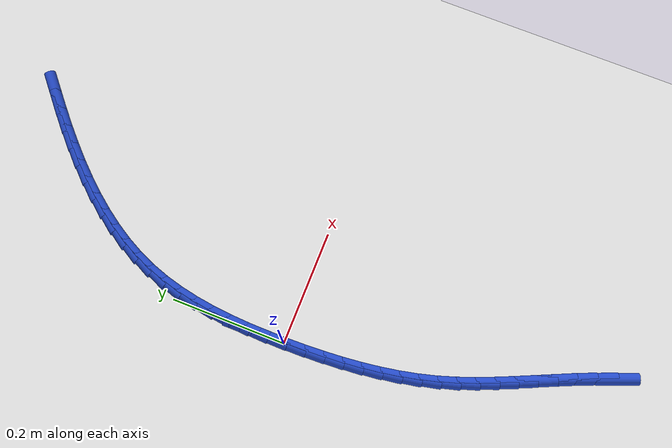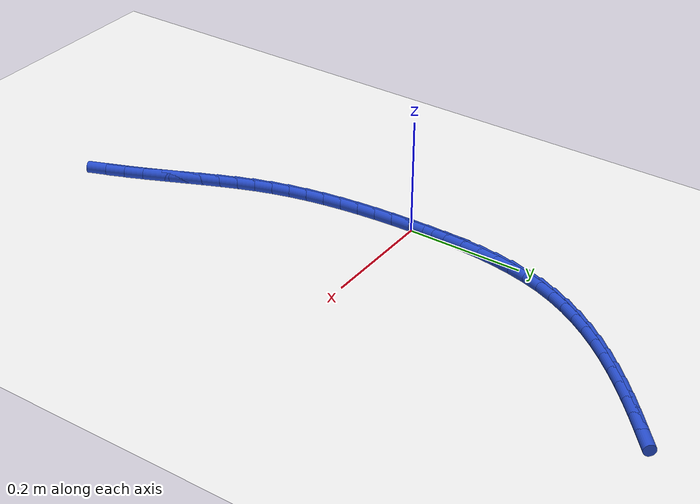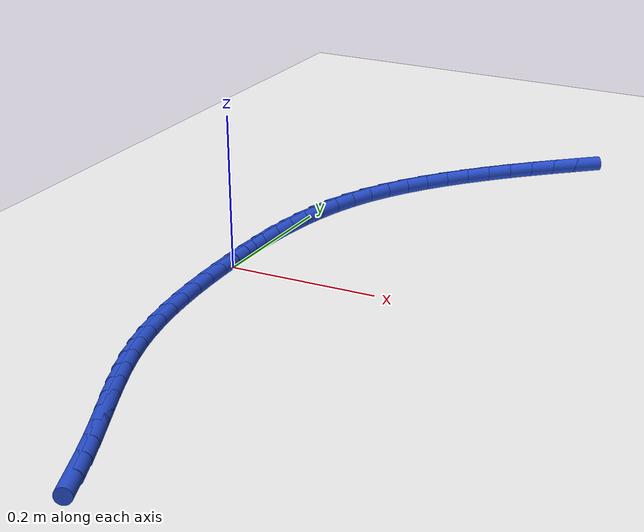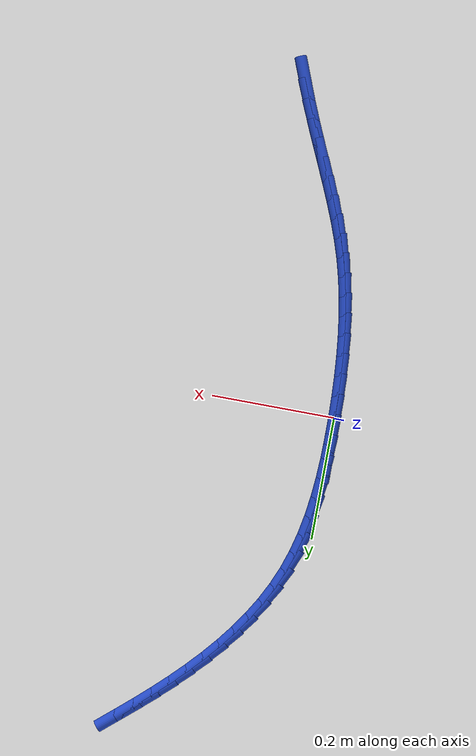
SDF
<sdf version="1.6">
 <world name="default">
  <model name="ground_plane">
   <static>1</static>
   <link name="link">
    <collision name="collision">
     <geometry><plane><normal>0 0 1</normal><size>100 100</size></plane></geometry>
     <surface><friction><ode><mu>100</mu><mu2>50</mu2></ode></friction></surface>
    </collision>
    <visual name="visual">
     <cast_shadows>0</cast_shadows>
     <geometry><plane><normal>0 0 1</normal><size>100 100</size></plane></geometry>
     <material>
      <script><uri>file://media/materials/scripts/gazebo.material</uri><name>Gazebo/WhiteGlow</name></script>
     </material>
    </visual>
   </link>
  </model>
  <model name="line">
   <link name="link_0">
    <pose>-4.119968255444917e-18 -4.85722573273506e-17 0.01 0 1.57 -1.563860208602755</pose>
    <collision name="collision">
     <geometry><cylinder><radius>0.01</radius><length>0.08</length></cylinder></geometry>
    </collision>
    <visual name="visual">
     <material>
      <script><name>Gazebo/Blue</name><uri>file://media/materials/scripts/gazebo.material</uri></script>
     </material>
     <geometry><cylinder><radius>0.01</radius><length>0.08</length></cylinder></geometry>
    </visual>
   </link>
   <link name="link_1">
    <pose>-0.00022978712475713397 0.03312853578625313 0.01 0 1.57 1.5530690252986277</pose>
    <collision name="collision">
     <geometry><cylinder><radius>0.01</radius><length>0.08</length></cylinder></geometry>
    </collision>
    <visual name="visual">
     <material>
      <script><name>Gazebo/Blue</name><uri>file://media/materials/scripts/gazebo.material</uri></script>
     </material>
     <geometry><cylinder><radius>0.01</radius><length>0.08</length></cylinder></geometry>
    </visual>
   </link>
   <link name="link_2">
    <pose>0.0003566372274891024 0.06620536486374896 0.01 0 1.57 1.521653860908902</pose>
    <collision name="collision">
     <geometry><cylinder><radius>0.01</radius><length>0.08</length></cylinder></geometry>
    </collision>
    <visual name="visual">
     <material>
      <script><name>Gazebo/Blue</name><uri>file://media/materials/scripts/gazebo.material</uri></script>
     </material>
     <geometry><cylinder><radius>0.01</radius><length>0.08</length></cylinder></geometry>
    </visual>
   </link>
   <link name="link_3">
    <pose>0.001974363329070332 0.09909796809290748 0.01 0 1.57 1.4831003377732992</pose>
    <collision name="collision">
     <geometry><cylinder><radius>0.01</radius><length>0.08</length></cylinder></geometry>
    </collision>
    <visual name="visual">
     <material>
      <script><name>Gazebo/Blue</name><uri>file://media/materials/scripts/gazebo.material</uri></script>
     </material>
     <geometry><cylinder><radius>0.01</radius><length>0.08</length></cylinder></geometry>
    </visual>
   </link>
   <link name="link_4">
    <pose>0.00483848145231818 0.13167382633414876 0.01 0 1.57 1.4369588551673336</pose>
    <collision name="collision">
     <geometry><cylinder><radius>0.01</radius><length>0.08</length></cylinder></geometry>
    </collision>
    <visual name="visual">
     <material>
      <script><name>Gazebo/Blue</name><uri>file://media/materials/scripts/gazebo.material</uri></script>
     </material>
     <geometry><cylinder><radius>0.01</radius><length>0.08</length></cylinder></geometry>
    </visual>
   </link>
   <link name="link_5">
    <pose>0.009164081869564276 0.16380042044789275 0.01 0 1.57 1.382769461718022</pose>
    <collision name="collision">
     <geometry><cylinder><radius>0.01</radius><length>0.08</length></cylinder></geometry>
    </collision>
    <visual name="visual">
     <material>
      <script><name>Gazebo/Blue</name><uri>file://media/materials/scripts/gazebo.material</uri></script>
     </material>
     <geometry><cylinder><radius>0.01</radius><length>0.08</length></cylinder></geometry>
    </visual>
   </link>
   <link name="link_6">
    <pose>0.01516625485314025 0.19534523129455955 0.01 0 1.57 1.3201413163516609</pose>
    <collision name="collision">
     <geometry><cylinder><radius>0.01</radius><length>0.08</length></cylinder></geometry>
    </collision>
    <visual name="visual">
     <material>
      <script><name>Gazebo/Blue</name><uri>file://media/materials/scripts/gazebo.material</uri></script>
     </material>
     <geometry><cylinder><radius>0.01</radius><length>0.08</length></cylinder></geometry>
    </visual>
   </link>
   <link name="link_7">
    <pose>0.02306009067537772 0.22617573973456911 0.01 0 1.57 1.2488648858817049</pose>
    <collision name="collision">
     <geometry><cylinder><radius>0.01</radius><length>0.08</length></cylinder></geometry>
    </collision>
    <visual name="visual">
     <material>
      <script><name>Gazebo/Blue</name><uri>file://media/materials/scripts/gazebo.material</uri></script>
     </material>
     <geometry><cylinder><radius>0.01</radius><length>0.08</length></cylinder></geometry>
    </visual>
   </link>
   <link name="link_8">
    <pose>0.033060679608608326 0.25615942662834157 0.01 0 1.57 1.1708176303665927</pose>
    <collision name="collision">
     <geometry><cylinder><radius>0.01</radius><length>0.08</length></cylinder></geometry>
    </collision>
    <visual name="visual">
     <material>
      <script><name>Gazebo/Blue</name><uri>file://media/materials/scripts/gazebo.material</uri></script>
     </material>
     <geometry><cylinder><radius>0.01</radius><length>0.08</length></cylinder></geometry>
    </visual>
   </link>
   <link name="link_9">
    <pose>0.04533268314077436 0.2851871685996576 0.01 0 1.57 1.095804309412011</pose>
    <collision name="collision">
     <geometry><cylinder><radius>0.01</radius><length>0.08</length></cylinder></geometry>
    </collision>
    <visual name="visual">
     <material>
      <script><name>Gazebo/Blue</name><uri>file://media/materials/scripts/gazebo.material</uri></script>
     </material>
     <geometry><cylinder><radius>0.01</radius><length>0.08</length></cylinder></geometry>
    </visual>
   </link>
   <link name="link_10">
    <pose>0.059775994024964425 0.31327267820302707 0.01 0 1.57 1.0274184675150033</pose>
    <collision name="collision">
     <geometry><cylinder><radius>0.01</radius><length>0.08</length></cylinder></geometry>
    </collision>
    <visual name="visual">
     <material>
      <script><name>Gazebo/Blue</name><uri>file://media/materials/scripts/gazebo.material</uri></script>
     </material>
     <geometry><cylinder><radius>0.01</radius><length>0.08</length></cylinder></geometry>
    </visual>
   </link>
   <link name="link_11">
    <pose>0.0762039113784414 0.3404698419578265 0.01 0 1.57 0.9659018627370537</pose>
    <collision name="collision">
     <geometry><cylinder><radius>0.01</radius><length>0.08</length></cylinder></geometry>
    </collision>
    <visual name="visual">
     <material>
      <script><name>Gazebo/Blue</name><uri>file://media/materials/scripts/gazebo.material</uri></script>
     </material>
     <geometry><cylinder><radius>0.01</radius><length>0.08</length></cylinder></geometry>
    </visual>
   </link>
   <link name="link_12">
    <pose>0.09442968509827855 0.3668325692184842 0.01 0 1.57 0.9112256142074939</pose>
    <collision name="collision">
     <geometry><cylinder><radius>0.01</radius><length>0.08</length></cylinder></geometry>
    </collision>
    <visual name="visual">
     <material>
      <script><name>Gazebo/Blue</name><uri>file://media/materials/scripts/gazebo.material</uri></script>
     </material>
     <geometry><cylinder><radius>0.01</radius><length>0.08</length></cylinder></geometry>
    </visual>
   </link>
   <link name="link_13">
    <pose>0.11426656508154909 0.39241476933942865 0.01 0 1.57 0.8631809461934924</pose>
    <collision name="collision">
     <geometry><cylinder><radius>0.01</radius><length>0.08</length></cylinder></geometry>
    </collision>
    <visual name="visual">
     <material>
      <script><name>Gazebo/Blue</name><uri>file://media/materials/scripts/gazebo.material</uri></script>
     </material>
     <geometry><cylinder><radius>0.01</radius><length>0.08</length></cylinder></geometry>
    </visual>
   </link>
   <link name="link_14">
    <pose>0.13552780122532632 0.4172703516750884 0.01 0 1.57 0.8214572864836346</pose>
    <collision name="collision">
     <geometry><cylinder><radius>0.01</radius><length>0.08</length></cylinder></geometry>
    </collision>
    <visual name="visual">
     <material>
      <script><name>Gazebo/Blue</name><uri>file://media/materials/scripts/gazebo.material</uri></script>
     </material>
     <geometry><cylinder><radius>0.01</radius><length>0.08</length></cylinder></geometry>
    </visual>
   </link>
   <link name="link_15">
    <pose>0.1580266434266834 0.4414532255798916 0.01 0 1.57 0.7857033113617928</pose>
    <collision name="collision">
     <geometry><cylinder><radius>0.01</radius><length>0.08</length></cylinder></geometry>
    </collision>
    <visual name="visual">
     <material>
      <script><name>Gazebo/Blue</name><uri>file://media/materials/scripts/gazebo.material</uri></script>
     </material>
     <geometry><cylinder><radius>0.01</radius><length>0.08</length></cylinder></geometry>
    </visual>
   </link>
   <link name="link_16">
    <pose>0.1815763415826937 0.4650173004082669 0.01 0 1.57 0.7555709073965531</pose>
    <collision name="collision">
     <geometry><cylinder><radius>0.01</radius><length>0.08</length></cylinder></geometry>
    </collision>
    <visual name="visual">
     <material>
      <script><name>Gazebo/Blue</name><uri>file://media/materials/scripts/gazebo.material</uri></script>
     </material>
     <geometry><cylinder><radius>0.01</radius><length>0.08</length></cylinder></geometry>
    </visual>
   </link>
   <link name="link_17">
    <pose>0.20599014559043044 0.48801648551464266 0.01 0 1.57 0.7307449985027238</pose>
    <collision name="collision">
     <geometry><cylinder><radius>0.01</radius><length>0.08</length></cylinder></geometry>
    </collision>
    <visual name="visual">
     <material>
      <script><name>Gazebo/Blue</name><uri>file://media/materials/scripts/gazebo.material</uri></script>
     </material>
     <geometry><cylinder><radius>0.01</radius><length>0.08</length></cylinder></geometry>
    </visual>
   </link>
   <link name="link_18">
    <pose>0.23108130534696675 0.5105046902534471 0.01 0 1.57 0.7116961287206145</pose>
    <collision name="collision">
     <geometry><cylinder><radius>0.01</radius><length>0.08</length></cylinder></geometry>
    </collision>
    <visual name="visual">
     <material>
      <script><name>Gazebo/Blue</name><uri>file://media/materials/scripts/gazebo.material</uri></script>
     </material>
     <geometry><cylinder><radius>0.01</radius><length>0.08</length></cylinder></geometry>
    </visual>
   </link>
   <link name="link_19">
    <pose>0.2566465327931422 0.5325542434749874 0.01 0 1.57 0.7029988984063777</pose>
    <collision name="collision">
     <geometry><cylinder><radius>0.01</radius><length>0.08</length></cylinder></geometry>
    </collision>
    <visual name="visual">
     <material>
      <script><name>Gazebo/Blue</name><uri>file://media/materials/scripts/gazebo.material</uri></script>
     </material>
     <geometry><cylinder><radius>0.01</radius><length>0.08</length></cylinder></geometry>
    </visual>
   </link>
   <link name="link_223">
    <pose>0.1443082292173403 -0.5265629875243887 0.01 0 1.57 -1.1974633732275561</pose>
    <collision name="collision">
     <geometry><cylinder><radius>0.01</radius><length>0.08</length></cylinder></geometry>
    </collision>
    <visual name="visual">
     <material>
      <script><name>Gazebo/Blue</name><uri>file://media/materials/scripts/gazebo.material</uri></script>
     </material>
     <geometry><cylinder><radius>0.01</radius><length>0.08</length></cylinder></geometry>
    </visual>
   </link>
   <link name="link_224">
    <pose>0.13165011469870863 -0.4942473533857866 0.01 0 1.57 -1.172674048928113</pose>
    <collision name="collision">
     <geometry><cylinder><radius>0.01</radius><length>0.08</length></cylinder></geometry>
    </collision>
    <visual name="visual">
     <material>
      <script><name>Gazebo/Blue</name><uri>file://media/materials/scripts/gazebo.material</uri></script>
     </material>
     <geometry><cylinder><radius>0.01</radius><length>0.08</length></cylinder></geometry>
    </visual>
   </link>
   <link name="link_225">
    <pose>0.11850180647734397 -0.4629851482750103 0.01 0 1.57 -1.154996519063253</pose>
    <collision name="collision">
     <geometry><cylinder><radius>0.01</radius><length>0.08</length></cylinder></geometry>
    </collision>
    <visual name="visual">
     <material>
      <script><name>Gazebo/Blue</name><uri>file://media/materials/scripts/gazebo.material</uri></script>
     </material>
     <geometry><cylinder><radius>0.01</radius><length>0.08</length></cylinder></geometry>
    </visual>
   </link>
   <link name="link_226">
    <pose>0.10508357376103707 -0.4325958123564092 0.01 0 1.57 -1.1465719938152743</pose>
    <collision name="collision">
     <geometry><cylinder><radius>0.01</radius><length>0.08</length></cylinder></geometry>
    </collision>
    <visual name="visual">
     <material>
      <script><name>Gazebo/Blue</name><uri>file://media/materials/scripts/gazebo.material</uri></script>
     </material>
     <geometry><cylinder><radius>0.01</radius><length>0.08</length></cylinder></geometry>
    </visual>
   </link>
   <link name="link_227">
    <pose>0.09165177254299414 -0.40285633936666654 0.01 0 1.57 -1.147989598652589</pose>
    <collision name="collision">
     <geometry><cylinder><radius>0.01</radius><length>0.08</length></cylinder></geometry>
    </collision>
    <visual name="visual">
     <material>
      <script><name>Gazebo/Blue</name><uri>file://media/materials/scripts/gazebo.material</uri></script>
     </material>
     <geometry><cylinder><radius>0.01</radius><length>0.08</length></cylinder></geometry>
    </visual>
   </link>
   <link name="link_228">
    <pose>0.07846275881642147 -0.3735437230424655 0.01 0 1.57 -1.159690387831436</pose>
    <collision name="collision">
     <geometry><cylinder><radius>0.01</radius><length>0.08</length></cylinder></geometry>
    </collision>
    <visual name="visual">
     <material>
      <script><name>Gazebo/Blue</name><uri>file://media/materials/scripts/gazebo.material</uri></script>
     </material>
     <geometry><cylinder><radius>0.01</radius><length>0.08</length></cylinder></geometry>
    </visual>
   </link>
   <link name="link_229">
    <pose>0.06577288857452523 -0.3444349571204889 0.01 0 1.57 -1.1819365127355173</pose>
    <collision name="collision">
     <geometry><cylinder><radius>0.01</radius><length>0.08</length></cylinder></geometry>
    </collision>
    <visual name="visual">
     <material>
      <script><name>Gazebo/Blue</name><uri>file://media/materials/scripts/gazebo.material</uri></script>
     </material>
     <geometry><cylinder><radius>0.01</radius><length>0.08</length></cylinder></geometry>
    </visual>
   </link>
   <link name="link_230">
    <pose>0.05383851781051142 -0.3153070353374193 0.01 0 1.57 -1.2147527787410342</pose>
    <collision name="collision">
     <geometry><cylinder><radius>0.01</radius><length>0.08</length></cylinder></geometry>
    </collision>
    <visual name="visual">
     <material>
      <script><name>Gazebo/Blue</name><uri>file://media/materials/scripts/gazebo.material</uri></script>
     </material>
     <geometry><cylinder><radius>0.01</radius><length>0.08</length></cylinder></geometry>
    </visual>
   </link>
   <link name="link_231">
    <pose>0.042916002517586885 -0.2859369514299412 0.01 0 1.57 -1.25784112380334</pose>
    <collision name="collision">
     <geometry><cylinder><radius>0.01</radius><length>0.08</length></cylinder></geometry>
    </collision>
    <visual name="visual">
     <material>
      <script><name>Gazebo/Blue</name><uri>file://media/materials/scripts/gazebo.material</uri></script>
     </material>
     <geometry><cylinder><radius>0.01</radius><length>0.08</length></cylinder></geometry>
    </visual>
   </link>
   <link name="link_232">
    <pose>0.033261653657908126 -0.2561017353409087 0.01 0 1.57 -1.307543617494237</pose>
    <collision name="collision">
     <geometry><cylinder><radius>0.01</radius><length>0.08</length></cylinder></geometry>
    </collision>
    <visual name="visual">
     <material>
      <script><name>Gazebo/Blue</name><uri>file://media/materials/scripts/gazebo.material</uri></script>
     </material>
     <geometry><cylinder><radius>0.01</radius><length>0.08</length></cylinder></geometry>
    </visual>
   </link>
   <link name="link_233">
    <pose>0.02505255855951627 -0.22564211494033243 0.01 0 1.57 -1.354297917874493</pose>
    <collision name="collision">
     <geometry><cylinder><radius>0.01</radius><length>0.08</length></cylinder></geometry>
    </collision>
    <visual name="visual">
     <material>
      <script><name>Gazebo/Blue</name><uri>file://media/materials/scripts/gazebo.material</uri></script>
     </material>
     <geometry><cylinder><radius>0.01</radius><length>0.08</length></cylinder></geometry>
    </visual>
   </link>
   <link name="link_234">
    <pose>0.018223570335717053 -0.19459358090527032 0.01 0 1.57 -1.3964346018506186</pose>
    <collision name="collision">
     <geometry><cylinder><radius>0.01</radius><length>0.08</length></cylinder></geometry>
    </collision>
    <visual name="visual">
     <material>
      <script><name>Gazebo/Blue</name><uri>file://media/materials/scripts/gazebo.material</uri></script>
     </material>
     <geometry><cylinder><radius>0.01</radius><length>0.08</length></cylinder></geometry>
    </visual>
   </link>
   <link name="link_235">
    <pose>0.012663405319378923 -0.16302871912196004 0.01 0 1.57 -1.4341089355572716</pose>
    <collision name="collision">
     <geometry><cylinder><radius>0.01</radius><length>0.08</length></cylinder></geometry>
    </collision>
    <visual name="visual">
     <material>
      <script><name>Gazebo/Blue</name><uri>file://media/materials/scripts/gazebo.material</uri></script>
     </material>
     <geometry><cylinder><radius>0.01</radius><length>0.08</length></cylinder></geometry>
    </visual>
   </link>
   <link name="link_236">
    <pose>0.008260779843370323 -0.13102011547663908 0.01 0 1.57 -1.4675087934026032</pose>
    <collision name="collision">
     <geometry><cylinder><radius>0.01</radius><length>0.08</length></cylinder></geometry>
    </collision>
    <visual name="visual">
     <material>
      <script><name>Gazebo/Blue</name><uri>file://media/materials/scripts/gazebo.material</uri></script>
     </material>
     <geometry><cylinder><radius>0.01</radius><length>0.08</length></cylinder></geometry>
    </visual>
   </link>
   <link name="link_237">
    <pose>0.004904410240559686 -0.09864035585554509 0.01 0 1.57 -1.496833538803839</pose>
    <collision name="collision">
     <geometry><cylinder><radius>0.01</radius><length>0.08</length></cylinder></geometry>
    </collision>
    <visual name="visual">
     <material>
      <script><name>Gazebo/Blue</name><uri>file://media/materials/scripts/gazebo.material</uri></script>
     </material>
     <geometry><cylinder><radius>0.01</radius><length>0.08</length></cylinder></geometry>
    </visual>
   </link>
   <link name="link_238">
    <pose>0.002483012843815411 -0.06596202614491482 0.01 0 1.57 -1.5222782208469496</pose>
    <collision name="collision">
     <geometry><cylinder><radius>0.01</radius><length>0.08</length></cylinder></geometry>
    </collision>
    <visual name="visual">
     <material>
      <script><name>Gazebo/Blue</name><uri>file://media/materials/scripts/gazebo.material</uri></script>
     </material>
     <geometry><cylinder><radius>0.01</radius><length>0.08</length></cylinder></geometry>
    </visual>
   </link>
   <link name="link_239">
    <pose>0.0008853039860060598 -0.03305771223098754 0.01 0 1.57 -1.544022168175572</pose>
    <collision name="collision">
     <geometry><cylinder><radius>0.01</radius><length>0.08</length></cylinder></geometry>
    </collision>
    <visual name="visual">
     <material>
      <script><name>Gazebo/Blue</name><uri>file://media/materials/scripts/gazebo.material</uri></script>
     </material>
     <geometry><cylinder><radius>0.01</radius><length>0.08</length></cylinder></geometry>
    </visual>
   </link>
   <link name="link_240">
    <pose>-8.673617379884035e-19 -2.7755575615628914e-17 0.01 0 1.57 -1.5622209355188685</pose>
    <collision name="collision">
     <geometry><cylinder><radius>0.01</radius><length>0.08</length></cylinder></geometry>
    </collision>
    <visual name="visual">
     <material>
      <script><name>Gazebo/Blue</name><uri>file://media/materials/scripts/gazebo.material</uri></script>
     </material>
     <geometry><cylinder><radius>0.01</radius><length>0.08</length></cylinder></geometry>
    </visual>
   </link>
   <link name="link_241">
    <pose>-0.00028418278133432754 0.03313852466181011 0.01 0 1.57 1.5645920349731697</pose>
    <collision name="collision">
     <geometry><cylinder><radius>0.01</radius><length>0.08</length></cylinder></geometry>
    </collision>
    <visual name="visual">
     <material>
      <script><name>Gazebo/Blue</name><uri>file://media/materials/scripts/gazebo.material</uri></script>
     </material>
     <geometry><cylinder><radius>0.01</radius><length>0.08</length></cylinder></geometry>
    </visual>
   </link>
   <link name="link_242">
    <pose>-7.852802512847744e-05 0.06628527586820529 0.01 0 1.57 -1.5696116294792155</pose>
    <collision name="collision">
     <geometry><cylinder><radius>0.01</radius><length>0.08</length></cylinder></geometry>
    </collision>
    <visual name="visual">
     <material>
      <script><name>Gazebo/Blue</name><uri>file://media/materials/scripts/gazebo.material</uri></script>
     </material>
     <geometry><cylinder><radius>0.01</radius><length>0.08</length></cylinder></geometry>
    </visual>
   </link>
  </model>
 </world>
</sdf>
